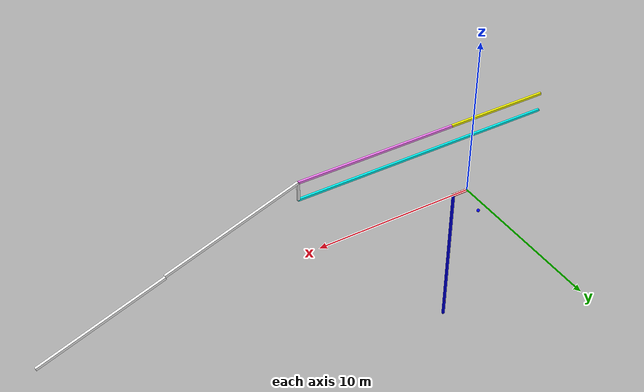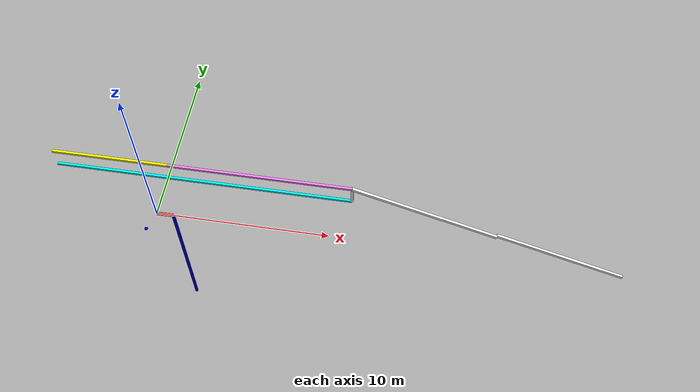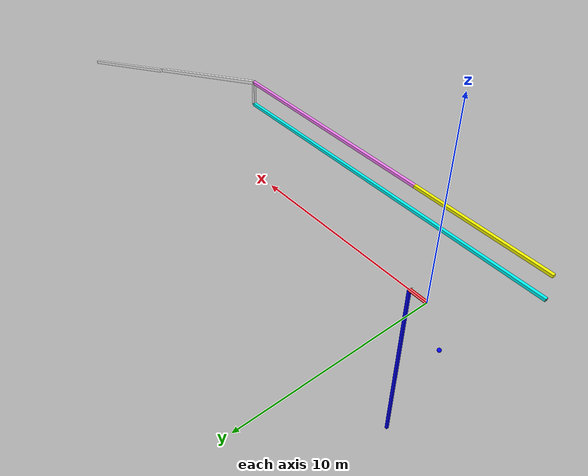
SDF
<sdf version="1.7">
    <model name="four_bar">
        <link name="A">
            <inertial>
                <pose>0.4803026889424933 0 0 0 0 0</pose>
                <mass>27.18743764705205</mass>
                <inertia>
                    <ixx>0.0801530974231173</ixx>
                    <iyy>2.130705978075058</iyy>
                    <izz>2.130705978075058</izz>
                    <ixy>0</ixy>
                    <ixz>0</ixz>
                    <iyz>0</iyz>
                </inertia>
            </inertial>
            <visual name="A_visual">
                <pose>0.4803026889424933 0 0 0 0 0</pose>
                <geometry>
                    <box>
                        <size>0.9606053778849866 0.133 0.133</size>
                    </box>
                </geometry>
                <material>
                    <diffuse>1 0 0 1</diffuse>
                </material>
            </visual>
            <visual name="A_pivot_visual">
                <pose>0 0 0 1.57079632679 0 0</pose>
                <geometry>
                    <cylinder>
                        <radius>0.01</radius>
                        <length>0.15</length>
                    </cylinder>
                </geometry>
                <material>
                    <diffuse>0 1 0 1</diffuse>
                </material>
            </visual>
        </link>
        <link name="B">
            <pose relative_to="A">0.9606053778849866 0 0 0 1.5708 0</pose>
            <inertial>
                <pose>4.786594406908538 0 0 0 0 0</pose>
                <mass>270.94421908417644</mass>
                <inertia>
                    <ixx>0.7987887152299996</ixx>
                    <iyy>2069.6442899344047</iyy>
                    <izz>2069.6442899344047</izz>
                    <ixy>0</ixy>
                    <ixz>0</ixz>
                    <iyz>0</iyz>
                </inertia>
            </inertial>
            <visual name="B_visual">
                <pose>4.786594406908538 0 0 0 0 0</pose>
                <geometry>
                    <box>
                        <size>9.573188813817076 0.133 0.133</size>
                    </box>
                </geometry>
                <material>
                    <diffuse>0 0 1 1</diffuse>
                </material>
            </visual>
            <visual name="B_pivot_visual">
                <pose>0 -0.05 0 1.57079632679 0 0</pose>
                <geometry>
                    <cylinder>
                        <radius>0.01</radius>
                        <length>0.25</length>
                    </cylinder>
                </geometry>
                <material>
                    <diffuse>0 1 0 1</diffuse>
                </material>
            </visual>
            <visual name="CouplerPoint">
                <pose relative_to="B">2 0 -2 0 0 0</pose>
                <geometry>
                    <sphere>
                        <radius>0.1</radius>
                    </sphere>
                </geometry>
                <material>
                    <diffuse>0 0 1 1</diffuse>
                </material>
            </visual>
            <visual name="B_frame_anchor_visual">
                <pose relative_to="Bf_bushing">0 0 0 0 0 0</pose>
                <geometry>
                    <cylinder>
                        <radius>0.01</radius>
                        <length>0.2</length>
                    </cylinder>
                </geometry>
                <material>
                    <diffuse>1 0 0 1</diffuse>
                </material>
            </visual>
        </link>
        <link name="C">
            <pose>1.5004972495905828 0 5.127977866954097 0 3.14159 0</pose>
            <inertial>
                <pose>3.1308749166940553 0 0 0 0 0</pose>
                <mass>177.2225484844837</mass>
                <inertia>
                    <ixx>0.5224816100236721</ixx>
                    <iyy>579.3286958038216</iyy>
                    <izz>579.3286958038216</izz>
                    <ixy>0</ixy>
                    <ixz>0</ixz>
                    <iyz>0</iyz>
                </inertia>
            </inertial>
            <visual name="C_visual">
                <pose>3.1308749166940553 0 0 0 0 0</pose>
                <geometry>
                    <box>
                        <size>6.2617498333881105 0.133 0.133</size>
                    </box>
                </geometry>
                <material>
                    <diffuse>1 1 0 1</diffuse>
                </material>
            </visual>
            <visual name="C_pivot_visual">
                <pose>0 0 0 1.57079632679 0 0</pose>
                <geometry>
                    <cylinder>
                        <radius>0.01</radius>
                        <length>0.15</length>
                    </cylinder>
                </geometry>
                <material>
                    <diffuse>0 1 0 1</diffuse>
                </material>
            </visual>
        </link>
        <link name="D">
            <pose relative_to="C">0 0 0 0 0 0</pose>
            <inertial>
                <pose>-4.896811955502412 0 0 0 0 0</pose>
                <mass>277.18306137882297</mass>
                <inertia>
                    <ixx>0.8171818621216668</ixx>
                    <iyy>2215.911302911455</iyy>
                    <izz>2215.911302911455</izz>
                    <ixy>0</ixy>
                    <ixz>0</ixz>
                    <iyz>0</iyz>
                </inertia>
            </inertial>
            <visual name="D_visual">
                <pose>-4.896811955502412 0 0 0 0 0</pose>
                <geometry>
                    <box>
                        <size>9.793623911004824 0.133 0.133</size>
                    </box>
                </geometry>
                <material>
                    <diffuse>1 .5 1 1</diffuse>
                </material>
            </visual>
            <visual name="D_pivot_visual">
                <pose>0 0 0 1.57079632679 0 0</pose>
                <geometry>
                    <cylinder>
                        <radius>0.01</radius>
                        <length>0.15</length>
                    </cylinder>
                </geometry>
                <material>
                    <diffuse>0 1 0 1</diffuse>
                </material>
            </visual>
        </link>
        <link name="E">
            <pose relative_to="D">-9.793623911004824 0 0 0 1.5708 0</pose>
            <inertial>
                <pose>-0.567267810453708 0 0 0 0 0</pose>
                <mass>32.110080957170055</mass>
                <inertia>
                    <ixx>0.09466587034189687</ixx>
                    <iyy>3.4915968874574737</iyy>
                    <izz>3.4915968874574737</izz>
                    <ixy>0</ixy>
                    <ixz>0</ixz>
                    <iyz>0</iyz>
                </inertia>
            </inertial>
            <visual name="E_visual">
                <pose>-0.567267810453708 0 0 0 0 0</pose>
                <geometry>
                    <box>
                        <size>1.134535620907416 0.133 0.133</size>
                    </box>
                </geometry>
                <material>
                    <diffuse>1 1 1 1</diffuse>
                </material>
            </visual>
            <visual name="E_pivot_visual">
                <pose>0 0 0 1.57079632679 0 0</pose>
                <geometry>
                    <cylinder>
                        <radius>0.01</radius>
                        <length>0.15</length>
                    </cylinder>
                </geometry>
                <material>
                    <diffuse>0 1 0 1</diffuse>
                </material>
            </visual>
        </link>

        <link name="F">
            <pose relative_to="E">-1.134535620907416 0 0 0 1.5708 0</pose>
            <inertial>
                <pose>-8.027686872196467 0 0 0 0 0</pose>
                <mass>454.40560986330667</mass>
                <inertia>
                    <ixx>1.3396634721453387</ixx>
                    <iyy>9761.871325889528</iyy>
                    <izz>9761.871325889528</izz>
                    <ixy>0</ixy>
                    <ixz>0</ixz>
                    <iyz>0</iyz>
                </inertia>
            </inertial>
            <visual name="F_visual">
                <pose>-8.027686872196467 0 0 0 0 0</pose>
                <geometry>
                    <box>
                        <size>16.055373744392934 0.133 0.133</size>
                    </box>
                </geometry>
                <material>
                    <diffuse>0 1 1 1</diffuse>
                </material>
            </visual>
            <visual name="F_pivot_visual">
                <pose>0 0 0 1.57079632679 0 0</pose>
                <geometry>
                    <cylinder>
                        <radius>0.01</radius>
                        <length>0.15</length>
                    </cylinder>
                </geometry>
                <material>
                    <diffuse>0 1 0 1</diffuse>
                </material>
            </visual>
            <visual name="F_frame_anchor_visual">
                <pose relative_to="Fb_bushing">0 0 0 0 0 0</pose>
                <geometry>
                    <cylinder>
                        <radius>0.01</radius>
                        <length>0.2</length>
                    </cylinder>
                </geometry>
                <material>
                    <diffuse>1 0 0 1</diffuse>
                </material>
            </visual>
        </link>
        <link name="G">
            <pose relative_to="E">0 0 0 0 1.91986 0</pose>
            <inertial>
                <pose>4.159 0 0 0 0 0</pose>
                <mass>2</mass>
                <inertia>
                    <ixx>0.08333333333333334</ixx>
                    <iyy>0.46666666666666</iyy>
                    <izz>0.416666666666668</izz>
                    <ixy>0</ixy>
                    <ixz>0</ixz>
                    <iyz>0</iyz>
                </inertia>
            </inertial>
            <visual name="G_visual">
                <pose>4.159 0 0 0 0 0</pose>
                <geometry>
                    <box>
                        <size>8.318 0.15 0.15</size>
                    </box>
                </geometry>
                <material>
                    <diffuse>1 1 1 1</diffuse>
                </material>
            </visual>
        </link>
        <link name="H">
            <pose relative_to="G">16.068 0 0 0 0 0</pose>
            <inertial>
                <pose>-3.875 0 0 0 0 0</pose>
                <mass>0.5</mass>
                <inertia>
                    <ixx>0.0008333333333333334</ixx>
                    <iyy>0.0046666666666666</iyy>
                    <izz>0.00416666666666668</izz>
                    <ixy>0</ixy>
                    <ixz>0</ixz>
                    <iyz>0</iyz>
                </inertia>
            </inertial>
            <visual name="H_visual">
                <pose>-3.875 0.1 0 0 0 0</pose>
                <geometry>
                    <box>
                        <size>7.75 0.15 0.15</size>
                    </box>
                </geometry>
                <material>
                    <diffuse>1 1 1 1</diffuse>
                </material>
            </visual>
        </link>
        <joint name="joint_GH" type="fixed">
            <parent>G</parent>
            <child>H</child>
            <axis>
                <xyz expressed_in="__model__">0 1 0</xyz>
                <limit>
                    <effort>0</effort>
                </limit>
                <dynamics>
                    <damping>10.0</damping>
                </dynamics>
            </axis>
        </joint>
        <joint name="joint_EF" type="revolute">
            <parent>E</parent>
            <child>F</child>
            <axis>
                <xyz expressed_in="__model__">0 1 0</xyz>
                <limit>
                    <effort>0</effort>
                </limit>
                <dynamics>
                    <damping>10.0</damping>
                </dynamics>
            </axis>
        </joint>
        <joint name="joint_DE" type="revolute">
            <parent>D</parent>
            <child>E</child>
            <axis>
                <xyz expressed_in="__model__">0 1 0</xyz>
                <limit>
                    <effort>0</effort>
                </limit>
                <dynamics>
                    <damping>10.0</damping>
                </dynamics>
            </axis>
        </joint>
        <joint name="joint_CD" type="fixed">
            <parent>C</parent>
            <child>D</child>
            <axis>
                <xyz expressed_in="__model__">0 1 0</xyz>
                <limit>
                    <effort>0</effort>
                </limit>
                <dynamics>
                    <damping>10.0</damping>
                </dynamics>
            </axis>
        </joint>
        <joint name="joint_EG" type="fixed">
            <parent>E</parent>
            <child>G</child>
            <axis>
                <xyz expressed_in="__model__">0 1 0</xyz>
                <limit>
                    <effort>0</effort>
                </limit>
                <dynamics>
                    <damping>10.0</damping>
                </dynamics>
            </axis>
        </joint>

        <joint name="joint_WA" type="revolute">
            <parent>world</parent>
            <child>A</child>
            <axis>
                <xyz expressed_in="__model__">0 1 0</xyz>
                <limit>
                </limit>
                <dynamics>
                    <damping>100.0</damping>
                </dynamics>
            </axis>
        </joint>
        <joint name="joint_AB" type="revolute">
            <parent>A</parent>
            <child>B</child>
            <axis>
                <xyz expressed_in="__model__">0 1 0</xyz>
                <limit>
                    <effort>0</effort>
                </limit>
                <dynamics>
                    <damping>10.0</damping>
                </dynamics>
            </axis>
        </joint>
        <joint name="joint_WC" type="revolute">
            <parent>world</parent>
            <child>C</child>
            <axis>
                <xyz expressed_in="__model__">0 1 0</xyz>
                <limit>
                    <upper>1.5708</upper>
                    <lower>-1.5708</lower>
                    <effort>0</effort>
                </limit>
                <dynamics>
                    <damping>10.0</damping>
                </dynamics>
            </axis>
        </joint>
        <frame name="Bf_bushing" attached_to="B">
            <pose relative_to="B">8.43865319290966 0 0 -1.57079632679 0 0</pose>
        </frame>
        <frame name="Fb_bushing" attached_to="F">
            <pose relative_to="F">-16.055373744392934 0 0 -1.57079632679 0 0</pose>
        </frame>
        <frame name="Bc_bushing" attached_to="B">
            <pose relative_to="B">9.573188813817076 0 0 -1.57079632679 0 0</pose>
        </frame>
        <frame name="Cb_bushing" attached_to="C">
            <pose relative_to="C">6.2617498333881105 0 0 -1.57079632679 0 0</pose>
        </frame>
    </model>
</sdf>
